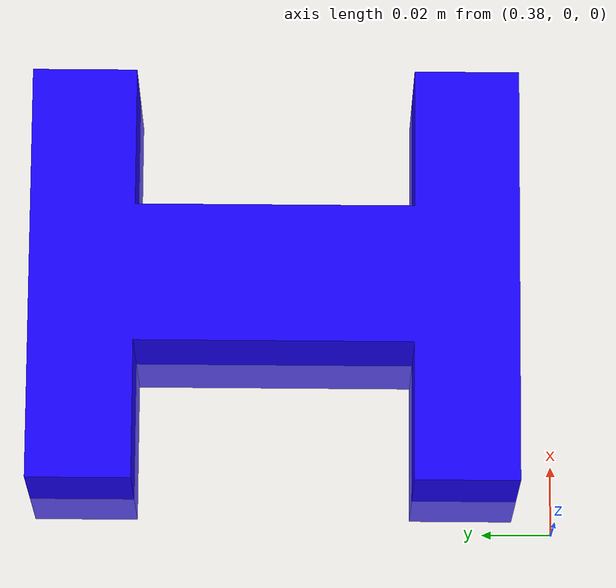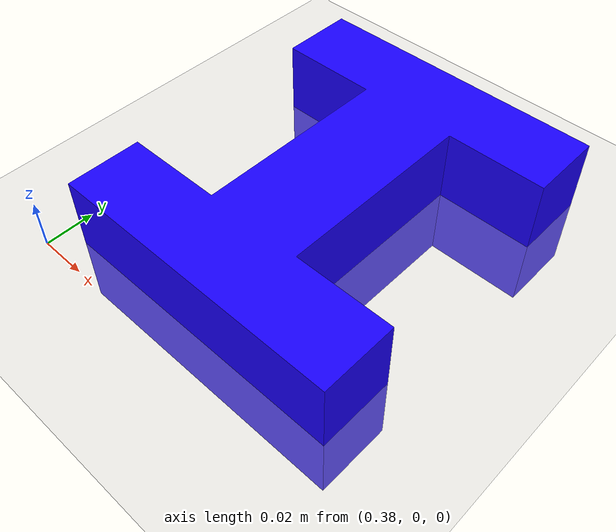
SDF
<sdf version='1.9'>
  <world name='empty'>
    <physics name='1ms' type='ignored'>
      <max_step_size>0.001</max_step_size>
      <real_time_factor>1</real_time_factor>
      <real_time_update_rate>1000</real_time_update_rate>
    </physics>
    <plugin name='gz::sim::systems::Physics' filename='ignition-gazebo-physics-system'/>
    <plugin name='gz::sim::systems::UserCommands' filename='ignition-gazebo-user-commands-system'/>
    <plugin name='gz::sim::systems::SceneBroadcaster' filename='ignition-gazebo-scene-broadcaster-system'/>
    <plugin name='gz::sim::systems::Contact' filename='ignition-gazebo-contact-system'/>
    <gravity>0 0 -9.8</gravity>
    <magnetic_field>6e-06 2.3e-05 -4.2e-05</magnetic_field>
    <atmosphere type='adiabatic'/>
    <scene>
      <ambient>0.4 0.4 0.4 1</ambient>
      <background>0.7 0.7 0.7 1</background>
      <shadows>true</shadows>
    </scene>
    <model name='ground_plane'>
      <static>true</static>
      <link name='link'>
        <collision name='collision'>
          <geometry>
            <plane>
              <normal>0 0 1</normal>
              <size>100 100</size>
            </plane>
          </geometry>
          <surface>
            <friction>
              <ode/>
            </friction>
            <bounce/>
            <contact/>
          </surface>
        </collision>
        <visual name='visual'>
          <geometry>
            <plane>
              <normal>0 0 1</normal>
              <size>100 100</size>
            </plane>
          </geometry>
          <material>
            <ambient>0.8 0.8 0.8 1</ambient>
            <diffuse>0.8 0.8 0.8 1</diffuse>
            <specular>0.8 0.8 0.8 1</specular>
          </material>
        </visual>
        <pose>0 0 0 0 -0 0</pose>
        <inertial>
          <pose>0 0 0 0 -0 0</pose>
          <mass>1</mass>
          <inertia>
            <ixx>1</ixx>
            <ixy>0</ixy>
            <ixz>0</ixz>
            <iyy>1</iyy>
            <iyz>0</iyz>
            <izz>1</izz>
          </inertia>
        </inertial>
        <enable_wind>false</enable_wind>
      </link>
      <pose>0 0 0 0 -0 0</pose>
      <self_collide>false</self_collide>
    </model>
    <model name='object'>
      <pose>0.45 0.01 -0 0 0 0</pose>
      <link name='link'>
        <visual name='visual'>
          <geometry>
            <mesh>
              <uri>file:///home/reishabh/dev_ws/install/rhino_description/share/rhino_description/description/models/object/model://object/meshes/object.stl</uri>
              <scale>0.001 0.001 0.001</scale>
            </mesh>
          </geometry>
          <material>
            <ambient>0.1 0 0.2 1</ambient>
            <diffuse>0.1 0 1 1</diffuse>
            <specular>0.5 0.5 0.5 1</specular>
            <emissive>0 0 0 1</emissive>
          </material>
        </visual>
        <collision name='collision'>
          <geometry>
            <mesh>
              <uri>file:///home/reishabh/dev_ws/install/rhino_description/share/rhino_description/description/models/object/model://object/meshes/object.stl</uri>
              <scale>0.001 0.001 0.001</scale>
            </mesh>
          </geometry>
          <surface>
            <friction>
              <ode>
                <mu>0.5</mu>         <!-- Coefficient of friction in primary direction -->
                <mu2>0.5</mu2>       <!-- Coefficient of friction in secondary direction -->
              </ode>
            </friction>
          </surface>
        </collision>
        <pose>0 0 0 0 -0 0</pose>
        <inertial>
          <pose>0 0 0 0 -0 0</pose>
          <mass>0.01</mass> <!-- 10 grams -->
          <inertia>
            <ixx>0.0000085</ixx>
            <ixy>0</ixy>
            <ixz>0</ixz>
            <iyy>0.0000085</iyy>
            <iyz>0</iyz>
            <izz>0.000002</izz>
          </inertia>
        </inertial>
        <enable_wind>false</enable_wind>
      </link>
      <static>false</static>
      <self_collide>false</self_collide>
    </model>
    <light name='sun' type='directional'>
      <pose>0 0 10 0 -0 0</pose>
      <cast_shadows>true</cast_shadows>
      <intensity>1</intensity>
      <direction>-0.5 0.1 -0.9</direction>
      <diffuse>0.8 0.8 0.8 1</diffuse>
      <specular>0.2 0.2 0.2 1</specular>
      <attenuation>
        <range>1000</range>
        <linear>0.01</linear>
        <constant>0.90000000000000002</constant>
        <quadratic>0.001</quadratic>
      </attenuation>
      <spot>
        <inner_angle>0</inner_angle>
        <outer_angle>0</outer_angle>
        <falloff>0</falloff>
      </spot>
    </light>
  </world>
</sdf>
